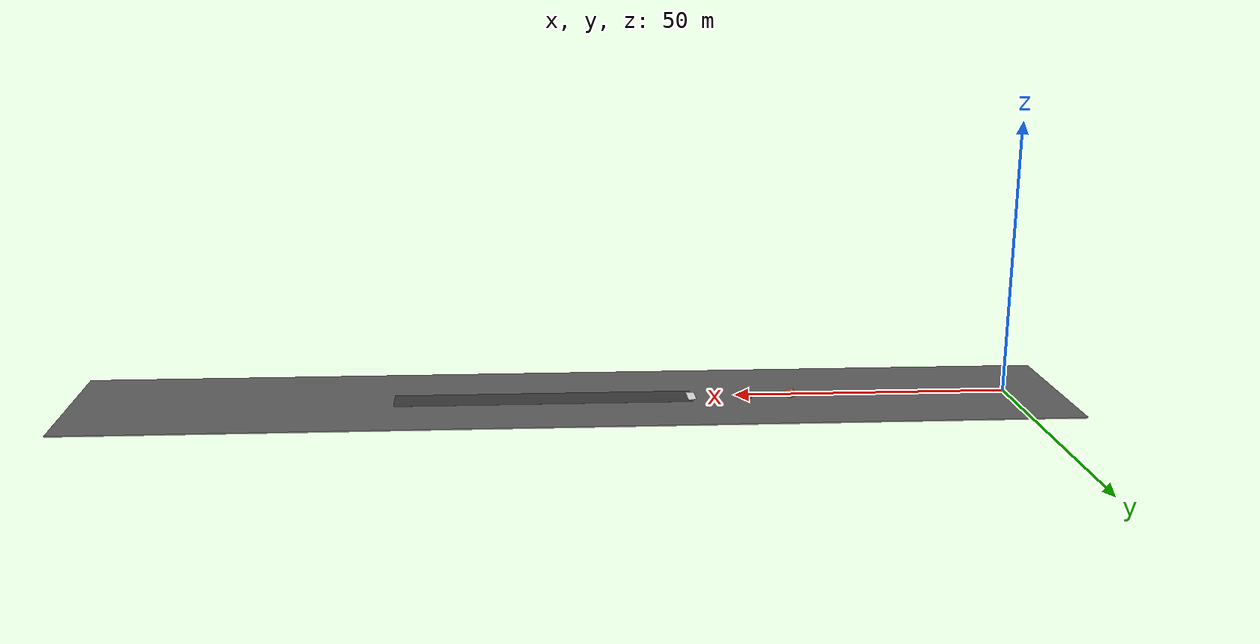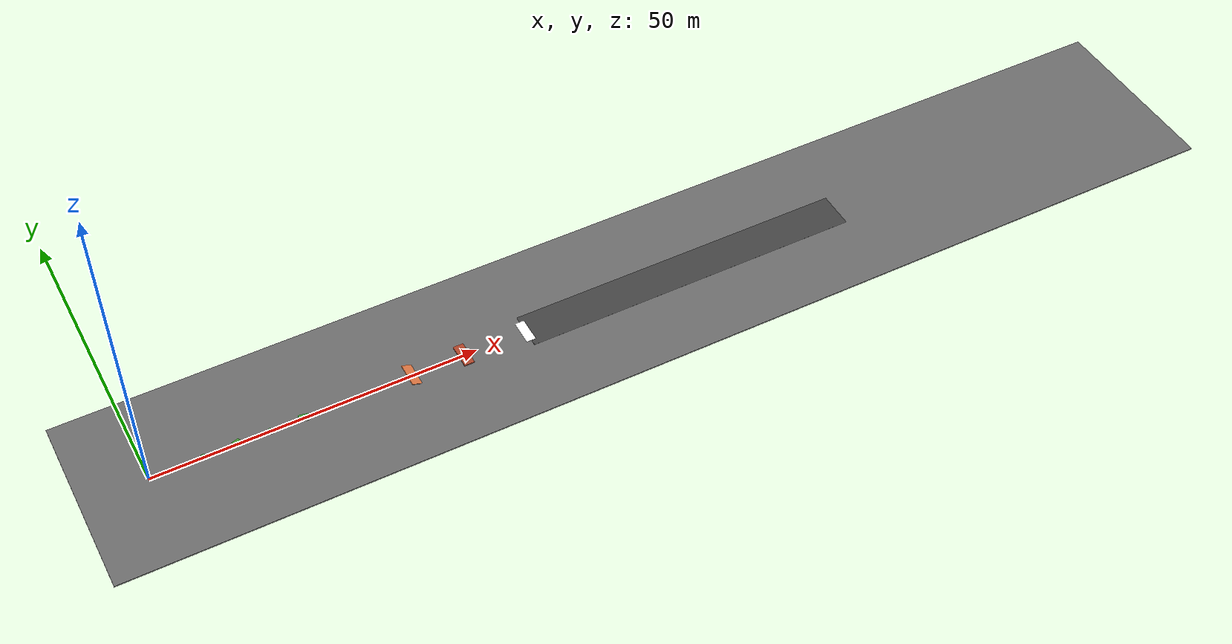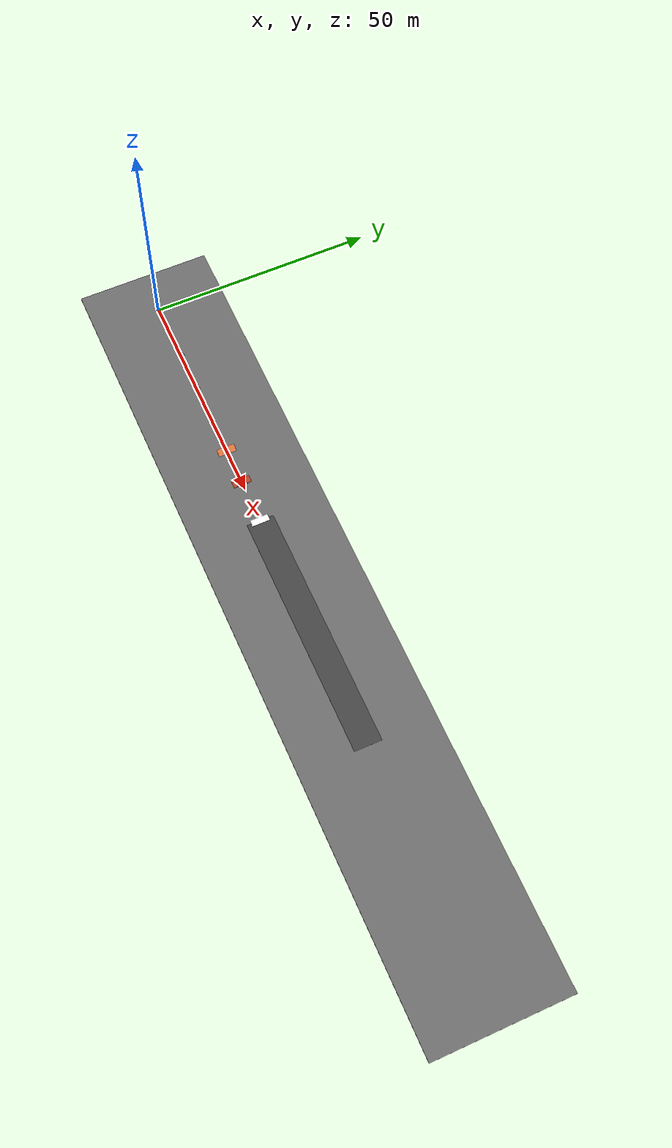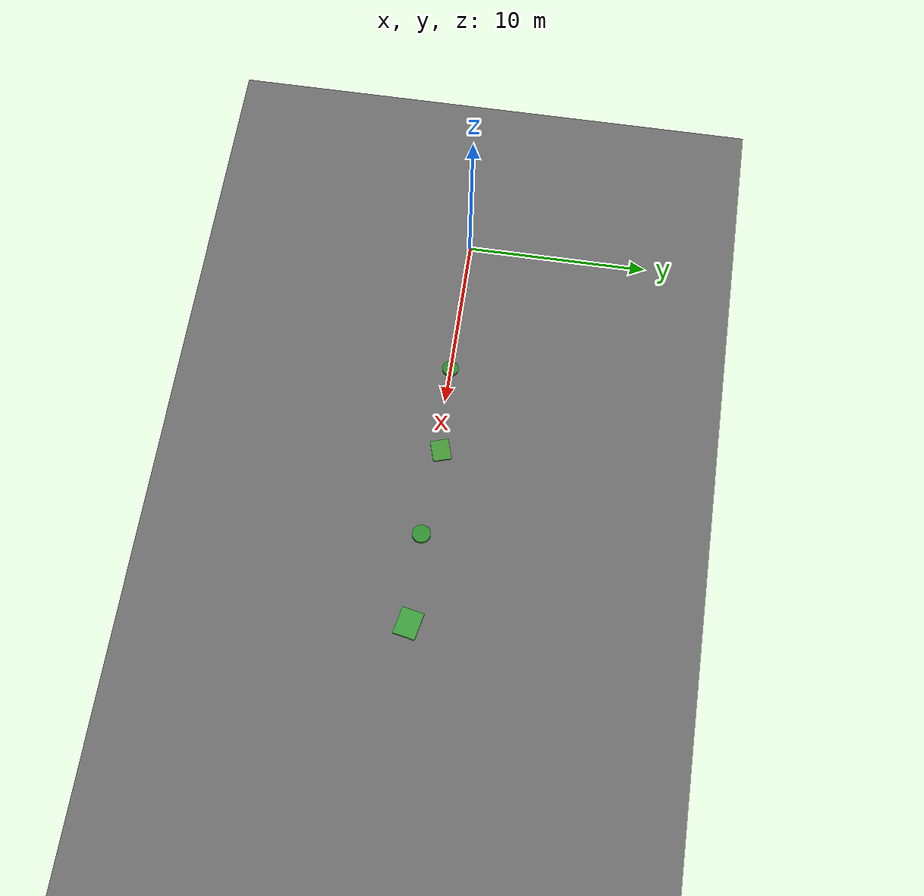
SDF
<sdf version="1.8">
  <world name="testbed_approach">
    <physics name="1ms" type="ignored">
      <max_step_size>0.001</max_step_size>
      <real_time_factor>1.0</real_time_factor>
    </physics>

    <!-- Essential Gazebo Core Systems -->
    <plugin filename="gz-sim-physics-system" name="gz::sim::systems::Physics"/>
    <plugin filename="gz-sim-user-commands-system" name="gz::sim::systems::UserCommands"/>
    <plugin filename="gz-sim-scene-broadcaster-system" name="gz::sim::systems::SceneBroadcaster"/>
    <plugin filename="gz-sim-sensors-system" name="gz::sim::systems::Sensors">
      <render_engine>ogre2</render_engine>
    </plugin>

    <light type="directional" name="sun">
      <cast_shadows>true</cast_shadows>
      <pose>50 0 30 0 0 0</pose>
      <diffuse>0.9 0.9 0.9 1</diffuse>
      <specular>0.2 0.2 0.2 1</specular>
      <direction>-0.5 0.1 -0.9</direction>
    </light>

    <!-- Solid Base Ground Box -->
    <model name="approach_ground_box">
      <static>true</static>
      <pose>80 0 -0.10 0 0 0</pose>
      <link name="ground_link">
        <collision name="ground_collision">
          <geometry>
            <box><size>180 30 0.20</size></box>
          </geometry>
        </collision>
        <visual name="ground_visual">
          <geometry>
            <box><size>180 30 0.20</size></box>
          </geometry>
          <material>
            <ambient>0.35 0.35 0.35 1</ambient>
            <diffuse>0.4 0.4 0.4 1</diffuse>
          </material>
        </visual>
      </link>
    </model>

    <!-- SECTOR 1: VEGETATION & CANOPY MOUNDS (X = 5m to 25m) -->
    <model name="veg_canopy_1">
      <static>true</static>
      <pose>8.0 0.0 0.08 0 0 0</pose>
      <link name="canopy1_link">
        <collision name="col"><geometry><cylinder><radius>0.45</radius><length>0.16</length></cylinder></geometry></collision>
        <visual name="vis">
          <geometry><cylinder><radius>0.45</radius><length>0.16</length></cylinder></geometry>
          <material><ambient>0.1 0.4 0.1 1</ambient><diffuse>0.15 0.5 0.15 1</diffuse></material>
        </visual>
      </link>
    </model>

    <model name="veg_mound_1">
      <static>true</static>
      <pose>13.0 0.2 0.05 0 0 0.3</pose>
      <link name="mound1_link">
        <collision name="col"><geometry><box><size>1.2 1.0 0.10</size></box></geometry></collision>
        <visual name="vis">
          <geometry><box><size>1.2 1.0 0.10</size></box></geometry>
          <material><ambient>0.2 0.5 0.2 1</ambient><diffuse>0.25 0.55 0.2 1</diffuse></material>
        </visual>
      </link>
    </model>

    <model name="veg_canopy_2">
      <static>true</static>
      <pose>18.0 -0.1 0.08 0 0 0</pose>
      <link name="canopy2_link">
        <collision name="col"><geometry><cylinder><radius>0.50</radius><length>0.16</length></cylinder></geometry></collision>
        <visual name="vis">
          <geometry><cylinder><radius>0.50</radius><length>0.16</length></cylinder></geometry>
          <material><ambient>0.12 0.42 0.12 1</ambient><diffuse>0.18 0.52 0.18 1</diffuse></material>
        </visual>
      </link>
    </model>

    <model name="veg_mound_2">
      <static>true</static>
      <pose>23.0 0.0 0.06 0 0 -0.2</pose>
      <link name="mound2_link">
        <collision name="col"><geometry><box><size>1.5 1.2 0.12</size></box></geometry></collision>
        <visual name="vis">
          <geometry><box><size>1.5 1.2 0.12</size></box></geometry>
          <material><ambient>0.18 0.48 0.18 1</ambient><diffuse>0.22 0.58 0.22 1</diffuse></material>
        </visual>
      </link>
    </model>

    <!-- SECTOR 2: 20-DEGREE SLOPE & STEPPED CURB (X = 35m to 55m) -->
    <!-- Scaled ramp: 2.2m length at 20 deg (0.349 rad) -> rises cleanly to Z = 0.42m -->
    <model name="approach_slope_ramp">
      <static>true</static>
      <pose>40.0 0.0 0.12 0.0 0.349066 0.0</pose>
      <link name="ramp_link">
        <collision name="col"><geometry><box><size>2.2 4.0 0.10</size></box></geometry></collision>
        <visual name="vis">
          <geometry><box><size>2.2 4.0 0.10</size></box></geometry>
          <material><ambient>0.8 0.4 0.2 1</ambient><diffuse>0.85 0.45 0.25 1</diffuse></material>
        </visual>
      </link>
    </model>

    <!-- Stepped curb: top at Z = 0.20m -->
    <model name="approach_stepped_curb">
      <static>true</static>
      <pose>48.0 0.0 0.10 0 0 0</pose>
      <link name="curb_link">
        <collision name="col"><geometry><box><size>1.6 4.0 0.20</size></box></geometry></collision>
        <visual name="vis">
          <geometry><box><size>1.6 4.0 0.20</size></box></geometry>
          <material><ambient>0.6 0.2 0.1 1</ambient><diffuse>0.65 0.25 0.15 1</diffuse></material>
        </visual>
      </link>
    </model>

    <!-- SECTOR 3: CLEAR RUNWAY THRESHOLD (X = 58m to 110m) -->
    <model name="approach_safe_runway">
      <static>true</static>
      <pose>85.0 0.0 0.005 0 0 0</pose>
      <link name="runway_link">
        <collision name="col">
          <geometry><box><size>54.0 6.0 0.01</size></box></geometry>
          <surface>
            <friction>
              <ode><mu>1.0</mu><mu2>1.0</mu2></ode>
            </friction>
          </surface>
        </collision>
        <visual name="vis">
          <geometry><box><size>54.0 6.0 0.01</size></box></geometry>
          <material>
            <ambient>0.2 0.2 0.2 1</ambient>
            <diffuse>0.25 0.25 0.25 1</diffuse>
            <specular>0.1 0.1 0.1 1</specular>
          </material>
        </visual>
      </link>
    </model>

    <!-- Runway Threshold Line -->
    <model name="runway_threshold_marker">
      <static>true</static>
      <pose>58.0 0.0 0.01 0 0 0</pose>
      <link name="marker_link">
        <visual name="vis">
          <geometry><box><size>1.5 4.0 0.01</size></box></geometry>
          <material>
            <ambient>0.9 0.9 0.9 1</ambient>
            <diffuse>0.95 0.95 0.95 1</diffuse>
          </material>
        </visual>
      </link>
    </model>
  </world>
</sdf>
